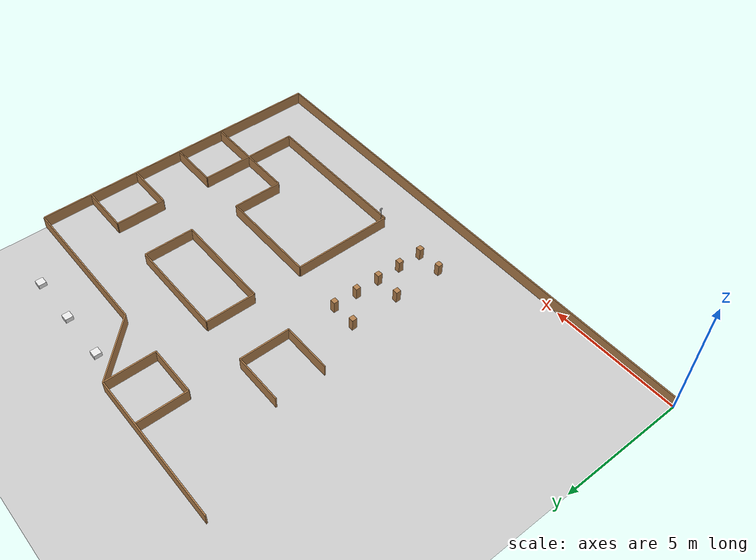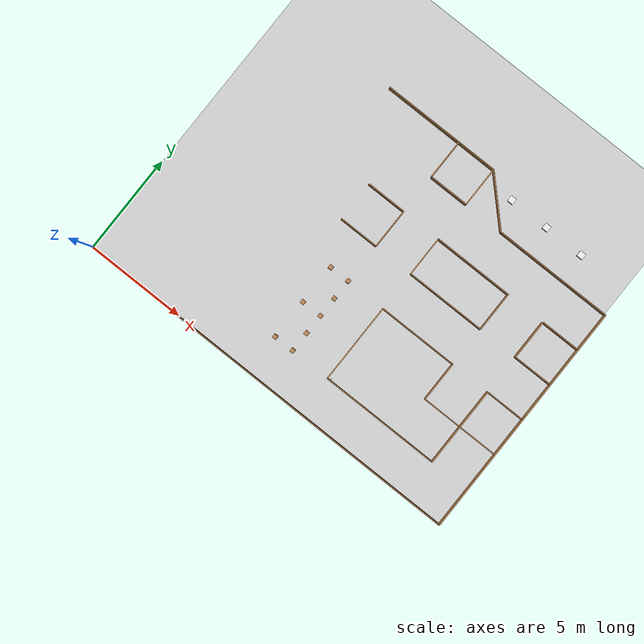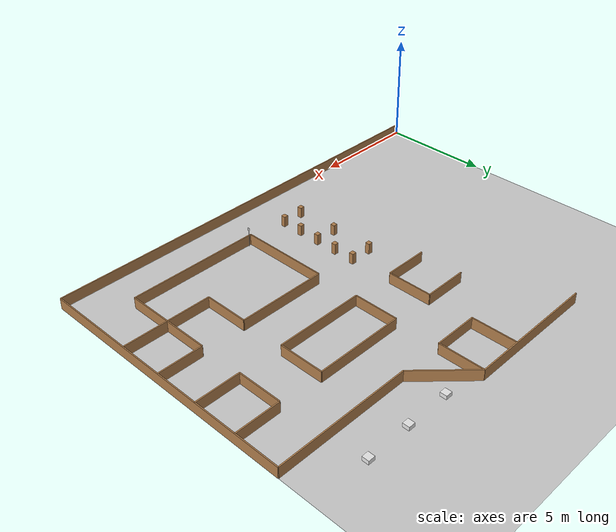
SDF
<sdf version="1.6">
 <world name="default">
  <include><uri>model://cube</uri><name>cube_2</name><pose>17.5 13.5 0 0 0 4.71238898038469</pose></include>
  <include><uri>model://cube</uri><name>cube_1</name><pose>15.5 13.5 0 0 0 4.71238898038469</pose></include>
  <include><uri>model://cube</uri><name>cube_0</name><pose>13.5 13.5 0 0 0 4.71238898038469</pose></include>
  <model name="box_72">
   <pose>10.0 2.0 0.25 0 0 0</pose>
   <link name="link">
    <inertial>
     <mass>1</mass>
     <inertia><ixx>0</ixx><ixy>0</ixy><ixz>0</ixz><iyy>0</iyy><iyz>0</iyz><izz>0</izz></inertia>
    </inertial>
    <collision name="collision"><geometry><box><size>0.2 0.2 0.5</size></box></geometry></collision>
    <visual name="visual">
     <geometry><box><size>0.2 0.2 0.5</size></box></geometry>
     <material>
      <script><name>Gazebo/WoodPallet</name><uri>file://media/materials/scripts/gazebo.material</uri></script>
     </material>
    </visual>
   </link>
   <static>1</static>
  </model>
  <model name="box_71">
   <pose>9.0 2.0 0.25 0 0 0</pose>
   <link name="link">
    <inertial>
     <mass>1</mass>
     <inertia><ixx>0</ixx><ixy>0</ixy><ixz>0</ixz><iyy>0</iyy><iyz>0</iyz><izz>0</izz></inertia>
    </inertial>
    <collision name="collision"><geometry><box><size>0.2 0.2 0.5</size></box></geometry></collision>
    <visual name="visual">
     <geometry><box><size>0.2 0.2 0.5</size></box></geometry>
     <material>
      <script><name>Gazebo/WoodPallet</name><uri>file://media/materials/scripts/gazebo.material</uri></script>
     </material>
    </visual>
   </link>
   <static>1</static>
  </model>
  <model name="box_69">
   <pose>10.0 3.0 0.25 0 0 0</pose>
   <link name="link">
    <inertial>
     <mass>1</mass>
     <inertia><ixx>0</ixx><ixy>0</ixy><ixz>0</ixz><iyy>0</iyy><iyz>0</iyz><izz>0</izz></inertia>
    </inertial>
    <collision name="collision"><geometry><box><size>0.2 0.2 0.5</size></box></geometry></collision>
    <visual name="visual">
     <geometry><box><size>0.2 0.2 0.5</size></box></geometry>
     <material>
      <script><name>Gazebo/WoodPallet</name><uri>file://media/materials/scripts/gazebo.material</uri></script>
     </material>
    </visual>
   </link>
   <static>1</static>
  </model>
  <model name="box_67">
   <pose>10.0 4.0 0.25 0 0 0</pose>
   <link name="link">
    <inertial>
     <mass>1</mass>
     <inertia><ixx>0</ixx><ixy>0</ixy><ixz>0</ixz><iyy>0</iyy><iyz>0</iyz><izz>0</izz></inertia>
    </inertial>
    <collision name="collision"><geometry><box><size>0.2 0.2 0.5</size></box></geometry></collision>
    <visual name="visual">
     <geometry><box><size>0.2 0.2 0.5</size></box></geometry>
     <material>
      <script><name>Gazebo/WoodPallet</name><uri>file://media/materials/scripts/gazebo.material</uri></script>
     </material>
    </visual>
   </link>
   <static>1</static>
  </model>
  <model name="box_66">
   <pose>9.0 4.0 0.25 0 0 0</pose>
   <link name="link">
    <inertial>
     <mass>1</mass>
     <inertia><ixx>0</ixx><ixy>0</ixy><ixz>0</ixz><iyy>0</iyy><iyz>0</iyz><izz>0</izz></inertia>
    </inertial>
    <collision name="collision"><geometry><box><size>0.2 0.2 0.5</size></box></geometry></collision>
    <visual name="visual">
     <geometry><box><size>0.2 0.2 0.5</size></box></geometry>
     <material>
      <script><name>Gazebo/WoodPallet</name><uri>file://media/materials/scripts/gazebo.material</uri></script>
     </material>
    </visual>
   </link>
   <static>1</static>
  </model>
  <model name="box_64">
   <pose>10.0 4.0 0.25 0 0 0</pose>
   <link name="link">
    <inertial>
     <mass>1</mass>
     <inertia><ixx>0</ixx><ixy>0</ixy><ixz>0</ixz><iyy>0</iyy><iyz>0</iyz><izz>0</izz></inertia>
    </inertial>
    <collision name="collision"><geometry><box><size>0.2 0.2 0.5</size></box></geometry></collision>
    <visual name="visual">
     <geometry><box><size>0.2 0.2 0.5</size></box></geometry>
     <material>
      <script><name>Gazebo/WoodPallet</name><uri>file://media/materials/scripts/gazebo.material</uri></script>
     </material>
    </visual>
   </link>
   <static>1</static>
  </model>
  <model name="box_63">
   <pose>9.0 4.0 0.25 0 0 0</pose>
   <link name="link">
    <inertial>
     <mass>1</mass>
     <inertia><ixx>0</ixx><ixy>0</ixy><ixz>0</ixz><iyy>0</iyy><iyz>0</iyz><izz>0</izz></inertia>
    </inertial>
    <collision name="collision"><geometry><box><size>0.2 0.2 0.5</size></box></geometry></collision>
    <visual name="visual">
     <geometry><box><size>0.2 0.2 0.5</size></box></geometry>
     <material>
      <script><name>Gazebo/WoodPallet</name><uri>file://media/materials/scripts/gazebo.material</uri></script>
     </material>
    </visual>
   </link>
   <static>1</static>
  </model>
  <model name="box_61">
   <pose>10.0 5.0 0.25 0 0 0</pose>
   <link name="link">
    <inertial>
     <mass>1</mass>
     <inertia><ixx>0</ixx><ixy>0</ixy><ixz>0</ixz><iyy>0</iyy><iyz>0</iyz><izz>0</izz></inertia>
    </inertial>
    <collision name="collision"><geometry><box><size>0.2 0.2 0.5</size></box></geometry></collision>
    <visual name="visual">
     <geometry><box><size>0.2 0.2 0.5</size></box></geometry>
     <material>
      <script><name>Gazebo/WoodPallet</name><uri>file://media/materials/scripts/gazebo.material</uri></script>
     </material>
    </visual>
   </link>
   <static>1</static>
  </model>
  <model name="box_59">
   <pose>10.0 6.0 0.25 0 0 0</pose>
   <link name="link">
    <inertial>
     <mass>1</mass>
     <inertia><ixx>0</ixx><ixy>0</ixy><ixz>0</ixz><iyy>0</iyy><iyz>0</iyz><izz>0</izz></inertia>
    </inertial>
    <collision name="collision"><geometry><box><size>0.2 0.2 0.5</size></box></geometry></collision>
    <visual name="visual">
     <geometry><box><size>0.2 0.2 0.5</size></box></geometry>
     <material>
      <script><name>Gazebo/WoodPallet</name><uri>file://media/materials/scripts/gazebo.material</uri></script>
     </material>
    </visual>
   </link>
   <static>1</static>
  </model>
  <model name="box_58">
   <pose>9.0 6.0 0.25 0 0 0</pose>
   <link name="link">
    <inertial>
     <mass>1</mass>
     <inertia><ixx>0</ixx><ixy>0</ixy><ixz>0</ixz><iyy>0</iyy><iyz>0</iyz><izz>0</izz></inertia>
    </inertial>
    <collision name="collision"><geometry><box><size>0.2 0.2 0.5</size></box></geometry></collision>
    <visual name="visual">
     <geometry><box><size>0.2 0.2 0.5</size></box></geometry>
     <material>
      <script><name>Gazebo/WoodPallet</name><uri>file://media/materials/scripts/gazebo.material</uri></script>
     </material>
    </visual>
   </link>
   <static>1</static>
  </model>
  <include>
   <uri>model://forward-sign</uri>
   <name>sign_0</name>
   <pose>12.14 2.0600000000000005 0 0 0 1.5707963267948966</pose>
  </include>
  <model name="box_40">
   <pose>12.0 13.0 0.25 0 0 -1.5707963267948966</pose>
   <link name="link">
    <inertial>
     <mass>1</mass>
     <inertia><ixx>0</ixx><ixy>0</ixy><ixz>0</ixz><iyy>0</iyy><iyz>0</iyz><izz>0</izz></inertia>
    </inertial>
    <collision name="collision"><geometry><box><size>2.0 0.05 0.5</size></box></geometry></collision>
    <visual name="visual">
     <geometry><box><size>2.0 0.05 0.5</size></box></geometry>
     <material>
      <script><name>Gazebo/WoodPallet</name><uri>file://media/materials/scripts/gazebo.material</uri></script>
     </material>
    </visual>
   </link>
   <static>1</static>
  </model>
  <model name="box_39">
   <pose>11.0 12.0 0.25 0 0 -3.141592653589793</pose>
   <link name="link">
    <inertial>
     <mass>1</mass>
     <inertia><ixx>0</ixx><ixy>0</ixy><ixz>0</ixz><iyy>0</iyy><iyz>0</iyz><izz>0</izz></inertia>
    </inertial>
    <collision name="collision"><geometry><box><size>2.0 0.05 0.5</size></box></geometry></collision>
    <visual name="visual">
     <geometry><box><size>2.0 0.05 0.5</size></box></geometry>
     <material>
      <script><name>Gazebo/WoodPallet</name><uri>file://media/materials/scripts/gazebo.material</uri></script>
     </material>
    </visual>
   </link>
   <static>1</static>
  </model>
  <model name="box_38">
   <pose>10.0 13.0 0.25 0 0 1.5707963267948966</pose>
   <link name="link">
    <inertial>
     <mass>1</mass>
     <inertia><ixx>0</ixx><ixy>0</ixy><ixz>0</ixz><iyy>0</iyy><iyz>0</iyz><izz>0</izz></inertia>
    </inertial>
    <collision name="collision"><geometry><box><size>2.0 0.05 0.5</size></box></geometry></collision>
    <visual name="visual">
     <geometry><box><size>2.0 0.05 0.5</size></box></geometry>
     <material>
      <script><name>Gazebo/WoodPallet</name><uri>file://media/materials/scripts/gazebo.material</uri></script>
     </material>
    </visual>
   </link>
   <static>1</static>
  </model>
  <model name="box_25">
   <pose>9.0 10.0 0.25 0 0 -3.141592653589793</pose>
   <link name="link">
    <inertial>
     <mass>1</mass>
     <inertia><ixx>0</ixx><ixy>0</ixy><ixz>0</ixz><iyy>0</iyy><iyz>0</iyz><izz>0</izz></inertia>
    </inertial>
    <collision name="collision"><geometry><box><size>2.0 0.05 0.5</size></box></geometry></collision>
    <visual name="visual">
     <geometry><box><size>2.0 0.05 0.5</size></box></geometry>
     <material>
      <script><name>Gazebo/WoodPallet</name><uri>file://media/materials/scripts/gazebo.material</uri></script>
     </material>
    </visual>
   </link>
   <static>1</static>
  </model>
  <model name="box_23">
   <pose>9.0 8.0 0.25 0 0 -0.0</pose>
   <link name="link">
    <inertial>
     <mass>1</mass>
     <inertia><ixx>0</ixx><ixy>0</ixy><ixz>0</ixz><iyy>0</iyy><iyz>0</iyz><izz>0</izz></inertia>
    </inertial>
    <collision name="collision"><geometry><box><size>2.0 0.05 0.5</size></box></geometry></collision>
    <visual name="visual">
     <geometry><box><size>2.0 0.05 0.5</size></box></geometry>
     <material>
      <script><name>Gazebo/WoodPallet</name><uri>file://media/materials/scripts/gazebo.material</uri></script>
     </material>
    </visual>
   </link>
   <static>1</static>
  </model>
  <model name="box_22">
   <pose>10.0 9.0 0.25 0 0 1.5707963267948966</pose>
   <link name="link">
    <inertial>
     <mass>1</mass>
     <inertia><ixx>0</ixx><ixy>0</ixy><ixz>0</ixz><iyy>0</iyy><iyz>0</iyz><izz>0</izz></inertia>
    </inertial>
    <collision name="collision"><geometry><box><size>2.0 0.05 0.5</size></box></geometry></collision>
    <visual name="visual">
     <geometry><box><size>2.0 0.05 0.5</size></box></geometry>
     <material>
      <script><name>Gazebo/WoodPallet</name><uri>file://media/materials/scripts/gazebo.material</uri></script>
     </material>
    </visual>
   </link>
   <static>1</static>
  </model>
  <model name="box_21">
   <pose>19.0 8.0 0.25 0 0 -3.141592653589793</pose>
   <link name="link">
    <inertial>
     <mass>1</mass>
     <inertia><ixx>0</ixx><ixy>0</ixy><ixz>0</ixz><iyy>0</iyy><iyz>0</iyz><izz>0</izz></inertia>
    </inertial>
    <collision name="collision"><geometry><box><size>2.0 0.05 0.5</size></box></geometry></collision>
    <visual name="visual">
     <geometry><box><size>2.0 0.05 0.5</size></box></geometry>
     <material>
      <script><name>Gazebo/WoodPallet</name><uri>file://media/materials/scripts/gazebo.material</uri></script>
     </material>
    </visual>
   </link>
   <static>1</static>
  </model>
  <model name="box_20">
   <pose>18.0 9.0 0.25 0 0 1.5707963267948966</pose>
   <link name="link">
    <inertial>
     <mass>1</mass>
     <inertia><ixx>0</ixx><ixy>0</ixy><ixz>0</ixz><iyy>0</iyy><iyz>0</iyz><izz>0</izz></inertia>
    </inertial>
    <collision name="collision"><geometry><box><size>2.0 0.05 0.5</size></box></geometry></collision>
    <visual name="visual">
     <geometry><box><size>2.0 0.05 0.5</size></box></geometry>
     <material>
      <script><name>Gazebo/WoodPallet</name><uri>file://media/materials/scripts/gazebo.material</uri></script>
     </material>
    </visual>
   </link>
   <static>1</static>
  </model>
  <model name="box_19">
   <pose>19.0 10.0 0.25 0 0 -0.0</pose>
   <link name="link">
    <inertial>
     <mass>1</mass>
     <inertia><ixx>0</ixx><ixy>0</ixy><ixz>0</ixz><iyy>0</iyy><iyz>0</iyz><izz>0</izz></inertia>
    </inertial>
    <collision name="collision"><geometry><box><size>2.0 0.05 0.5</size></box></geometry></collision>
    <visual name="visual">
     <geometry><box><size>2.0 0.05 0.5</size></box></geometry>
     <material>
      <script><name>Gazebo/WoodPallet</name><uri>file://media/materials/scripts/gazebo.material</uri></script>
     </material>
    </visual>
   </link>
   <static>1</static>
  </model>
  <model name="box_18">
   <pose>14.0 10.0 0.25 0 0 -0.0</pose>
   <link name="link">
    <inertial>
     <mass>1</mass>
     <inertia><ixx>0</ixx><ixy>0</ixy><ixz>0</ixz><iyy>0</iyy><iyz>0</iyz><izz>0</izz></inertia>
    </inertial>
    <collision name="collision"><geometry><box><size>4.0 0.05 0.5</size></box></geometry></collision>
    <visual name="visual">
     <geometry><box><size>4.0 0.05 0.5</size></box></geometry>
     <material>
      <script><name>Gazebo/WoodPallet</name><uri>file://media/materials/scripts/gazebo.material</uri></script>
     </material>
    </visual>
   </link>
   <static>1</static>
  </model>
  <model name="box_17">
   <pose>16.0 9.0 0.25 0 0 -1.5707963267948966</pose>
   <link name="link">
    <inertial>
     <mass>1</mass>
     <inertia><ixx>0</ixx><ixy>0</ixy><ixz>0</ixz><iyy>0</iyy><iyz>0</iyz><izz>0</izz></inertia>
    </inertial>
    <collision name="collision"><geometry><box><size>2.0 0.05 0.5</size></box></geometry></collision>
    <visual name="visual">
     <geometry><box><size>2.0 0.05 0.5</size></box></geometry>
     <material>
      <script><name>Gazebo/WoodPallet</name><uri>file://media/materials/scripts/gazebo.material</uri></script>
     </material>
    </visual>
   </link>
   <static>1</static>
  </model>
  <model name="box_16">
   <pose>14.0 8.0 0.25 0 0 -3.141592653589793</pose>
   <link name="link">
    <inertial>
     <mass>1</mass>
     <inertia><ixx>0</ixx><ixy>0</ixy><ixz>0</ixz><iyy>0</iyy><iyz>0</iyz><izz>0</izz></inertia>
    </inertial>
    <collision name="collision"><geometry><box><size>4.0 0.05 0.5</size></box></geometry></collision>
    <visual name="visual">
     <geometry><box><size>4.0 0.05 0.5</size></box></geometry>
     <material>
      <script><name>Gazebo/WoodPallet</name><uri>file://media/materials/scripts/gazebo.material</uri></script>
     </material>
    </visual>
   </link>
   <static>1</static>
  </model>
  <model name="box_15">
   <pose>12.0 9.0 0.25 0 0 1.5707963267948966</pose>
   <link name="link">
    <inertial>
     <mass>1</mass>
     <inertia><ixx>0</ixx><ixy>0</ixy><ixz>0</ixz><iyy>0</iyy><iyz>0</iyz><izz>0</izz></inertia>
    </inertial>
    <collision name="collision"><geometry><box><size>2.0 0.05 0.5</size></box></geometry></collision>
    <visual name="visual">
     <geometry><box><size>2.0 0.05 0.5</size></box></geometry>
     <material>
      <script><name>Gazebo/WoodPallet</name><uri>file://media/materials/scripts/gazebo.material</uri></script>
     </material>
    </visual>
   </link>
   <static>1</static>
  </model>
  <model name="box_14">
   <pose>19.0 6.0 0.25 0 0 -3.141592653589793</pose>
   <link name="link">
    <inertial>
     <mass>1</mass>
     <inertia><ixx>0</ixx><ixy>0</ixy><ixz>0</ixz><iyy>0</iyy><iyz>0</iyz><izz>0</izz></inertia>
    </inertial>
    <collision name="collision"><geometry><box><size>2.0 0.05 0.5</size></box></geometry></collision>
    <visual name="visual">
     <geometry><box><size>2.0 0.05 0.5</size></box></geometry>
     <material>
      <script><name>Gazebo/WoodPallet</name><uri>file://media/materials/scripts/gazebo.material</uri></script>
     </material>
    </visual>
   </link>
   <static>1</static>
  </model>
  <model name="box_13">
   <pose>18.0 4.0 0.25 0 0 -1.5707963267948966</pose>
   <link name="link">
    <inertial>
     <mass>1</mass>
     <inertia><ixx>0</ixx><ixy>0</ixy><ixz>0</ixz><iyy>0</iyy><iyz>0</iyz><izz>0</izz></inertia>
    </inertial>
    <collision name="collision"><geometry><box><size>4.0 0.05 0.5</size></box></geometry></collision>
    <visual name="visual">
     <geometry><box><size>4.0 0.05 0.5</size></box></geometry>
     <material>
      <script><name>Gazebo/WoodPallet</name><uri>file://media/materials/scripts/gazebo.material</uri></script>
     </material>
    </visual>
   </link>
   <static>1</static>
  </model>
  <model name="box_12">
   <pose>15.0 2.0 0.25 0 0 -3.141592653589793</pose>
   <link name="link">
    <inertial>
     <mass>1</mass>
     <inertia><ixx>0</ixx><ixy>0</ixy><ixz>0</ixz><iyy>0</iyy><iyz>0</iyz><izz>0</izz></inertia>
    </inertial>
    <collision name="collision"><geometry><box><size>6.0 0.05 0.5</size></box></geometry></collision>
    <visual name="visual">
     <geometry><box><size>6.0 0.05 0.5</size></box></geometry>
     <material>
      <script><name>Gazebo/WoodPallet</name><uri>file://media/materials/scripts/gazebo.material</uri></script>
     </material>
    </visual>
   </link>
   <static>1</static>
  </model>
  <model name="box_11">
   <pose>12.0 4.0 0.25 0 0 1.5707963267948966</pose>
   <link name="link">
    <inertial>
     <mass>1</mass>
     <inertia><ixx>0</ixx><ixy>0</ixy><ixz>0</ixz><iyy>0</iyy><iyz>0</iyz><izz>0</izz></inertia>
    </inertial>
    <collision name="collision"><geometry><box><size>4.0 0.05 0.5</size></box></geometry></collision>
    <visual name="visual">
     <geometry><box><size>4.0 0.05 0.5</size></box></geometry>
     <material>
      <script><name>Gazebo/WoodPallet</name><uri>file://media/materials/scripts/gazebo.material</uri></script>
     </material>
    </visual>
   </link>
   <static>1</static>
  </model>
  <model name="box_10">
   <pose>14.0 6.0 0.25 0 0 -0.0</pose>
   <link name="link">
    <inertial>
     <mass>1</mass>
     <inertia><ixx>0</ixx><ixy>0</ixy><ixz>0</ixz><iyy>0</iyy><iyz>0</iyz><izz>0</izz></inertia>
    </inertial>
    <collision name="collision"><geometry><box><size>4.0 0.05 0.5</size></box></geometry></collision>
    <visual name="visual">
     <geometry><box><size>4.0 0.05 0.5</size></box></geometry>
     <material>
      <script><name>Gazebo/WoodPallet</name><uri>file://media/materials/scripts/gazebo.material</uri></script>
     </material>
    </visual>
   </link>
   <static>1</static>
  </model>
  <model name="box_9">
   <pose>16.0 5.0 0.25 0 0 -1.5707963267948966</pose>
   <link name="link">
    <inertial>
     <mass>1</mass>
     <inertia><ixx>0</ixx><ixy>0</ixy><ixz>0</ixz><iyy>0</iyy><iyz>0</iyz><izz>0</izz></inertia>
    </inertial>
    <collision name="collision"><geometry><box><size>2.0 0.05 0.5</size></box></geometry></collision>
    <visual name="visual">
     <geometry><box><size>2.0 0.05 0.5</size></box></geometry>
     <material>
      <script><name>Gazebo/WoodPallet</name><uri>file://media/materials/scripts/gazebo.material</uri></script>
     </material>
    </visual>
   </link>
   <static>1</static>
  </model>
  <model name="box_8">
   <pose>18.0 4.0 0.25 0 0 -0.0</pose>
   <link name="link">
    <inertial>
     <mass>1</mass>
     <inertia><ixx>0</ixx><ixy>0</ixy><ixz>0</ixz><iyy>0</iyy><iyz>0</iyz><izz>0</izz></inertia>
    </inertial>
    <collision name="collision"><geometry><box><size>4.0 0.05 0.5</size></box></geometry></collision>
    <visual name="visual">
     <geometry><box><size>4.0 0.05 0.5</size></box></geometry>
     <material>
      <script><name>Gazebo/WoodPallet</name><uri>file://media/materials/scripts/gazebo.material</uri></script>
     </material>
    </visual>
   </link>
   <static>1</static>
  </model>
  <model name="box_7">
   <pose>9.0 14.0 0.25 0 0 -0.0</pose>
   <link name="link">
    <inertial>
     <mass>1</mass>
     <inertia><ixx>0</ixx><ixy>0</ixy><ixz>0</ixz><iyy>0</iyy><iyz>0</iyz><izz>0</izz></inertia>
    </inertial>
    <collision name="collision"><geometry><box><size>6.0 0.05 0.5</size></box></geometry></collision>
    <visual name="visual">
     <geometry><box><size>6.0 0.05 0.5</size></box></geometry>
     <material>
      <script><name>Gazebo/WoodPallet</name><uri>file://media/materials/scripts/gazebo.material</uri></script>
     </material>
    </visual>
   </link>
   <static>1</static>
  </model>
  <model name="box_6">
   <pose>13.0 13.0 0.25 0 0 -0.7853981633974483</pose>
   <link name="link">
    <inertial>
     <mass>1</mass>
     <inertia><ixx>0</ixx><ixy>0</ixy><ixz>0</ixz><iyy>0</iyy><iyz>0</iyz><izz>0</izz></inertia>
    </inertial>
    <collision name="collision">
     <geometry><box><size>2.8284271247461903 0.05 0.5</size></box></geometry>
    </collision>
    <visual name="visual">
     <geometry><box><size>2.8284271247461903 0.05 0.5</size></box></geometry>
     <material>
      <script><name>Gazebo/WoodPallet</name><uri>file://media/materials/scripts/gazebo.material</uri></script>
     </material>
    </visual>
   </link>
   <static>1</static>
  </model>
  <model name="box_5">
   <pose>17.0 12.0 0.25 0 0 -0.0</pose>
   <link name="link">
    <inertial>
     <mass>1</mass>
     <inertia><ixx>0</ixx><ixy>0</ixy><ixz>0</ixz><iyy>0</iyy><iyz>0</iyz><izz>0</izz></inertia>
    </inertial>
    <collision name="collision"><geometry><box><size>6.0 0.05 0.5</size></box></geometry></collision>
    <visual name="visual">
     <geometry><box><size>6.0 0.05 0.5</size></box></geometry>
     <material>
      <script><name>Gazebo/WoodPallet</name><uri>file://media/materials/scripts/gazebo.material</uri></script>
     </material>
    </visual>
   </link>
   <static>1</static>
  </model>
  <model name="box_4">
   <pose>20.0 6.0 0.25 0 0 -1.5707963267948966</pose>
   <link name="link">
    <inertial>
     <mass>1</mass>
     <inertia><ixx>0</ixx><ixy>0</ixy><ixz>0</ixz><iyy>0</iyy><iyz>0</iyz><izz>0</izz></inertia>
    </inertial>
    <collision name="collision"><geometry><box><size>12.0 0.05 0.5</size></box></geometry></collision>
    <visual name="visual">
     <geometry><box><size>12.0 0.05 0.5</size></box></geometry>
     <material>
      <script><name>Gazebo/WoodPallet</name><uri>file://media/materials/scripts/gazebo.material</uri></script>
     </material>
    </visual>
   </link>
   <static>1</static>
  </model>
  <model name="box_3">
   <pose>10.0 0.0 0.25 0 0 -3.141592653589793</pose>
   <link name="link">
    <inertial>
     <mass>1</mass>
     <inertia><ixx>0</ixx><ixy>0</ixy><ixz>0</ixz><iyy>0</iyy><iyz>0</iyz><izz>0</izz></inertia>
    </inertial>
    <collision name="collision"><geometry><box><size>20.0 0.05 0.5</size></box></geometry></collision>
    <visual name="visual">
     <geometry><box><size>20.0 0.05 0.5</size></box></geometry>
     <material>
      <script><name>Gazebo/WoodPallet</name><uri>file://media/materials/scripts/gazebo.material</uri></script>
     </material>
    </visual>
   </link>
   <static>1</static>
  </model>
  <include><uri>model://my_ground_plane</uri><pose>10 10 0 0 0 0</pose></include>
 </world>
</sdf>
